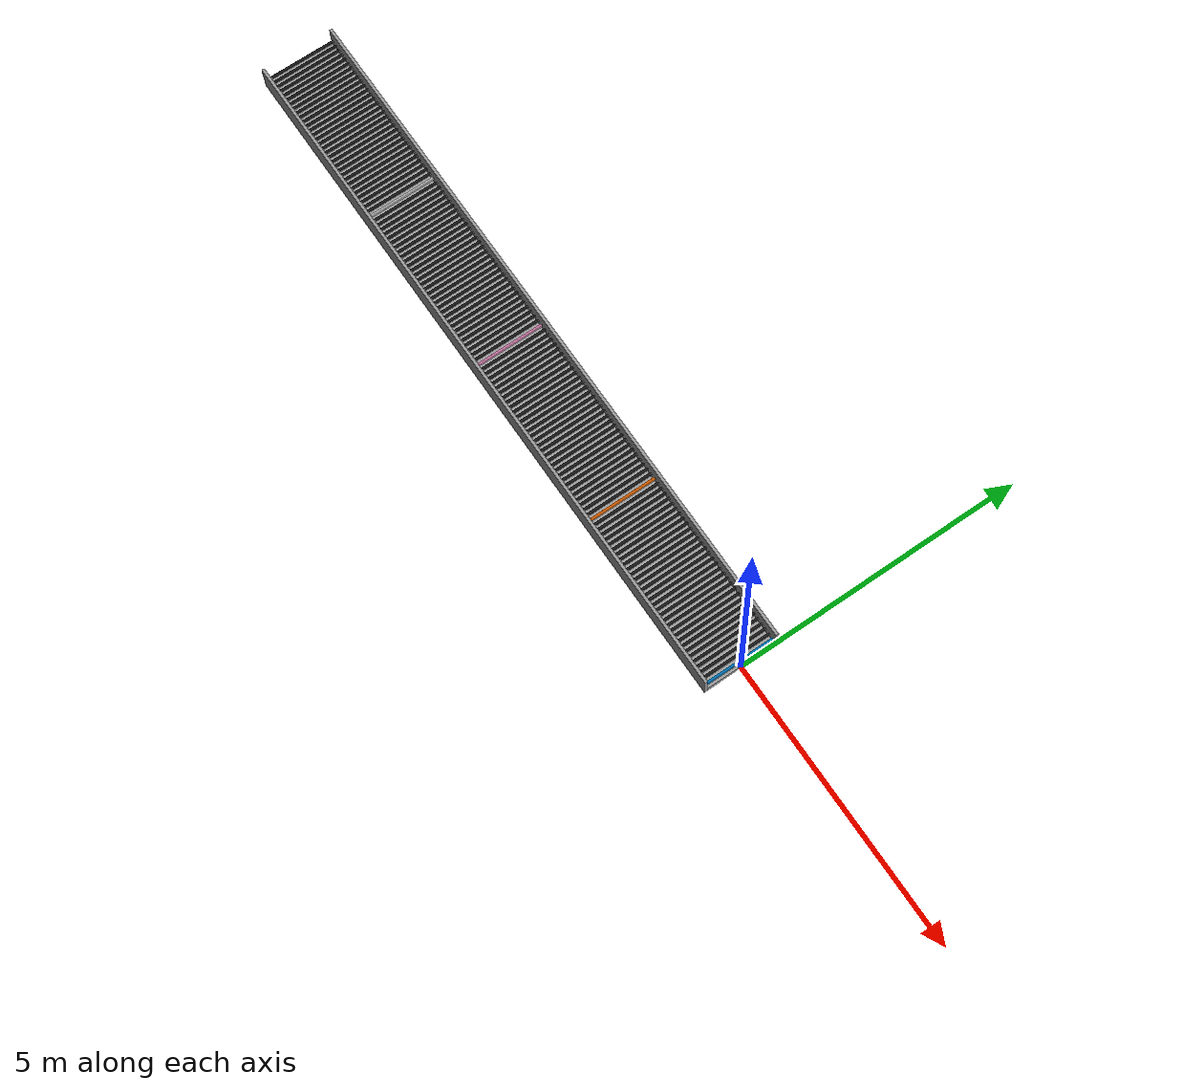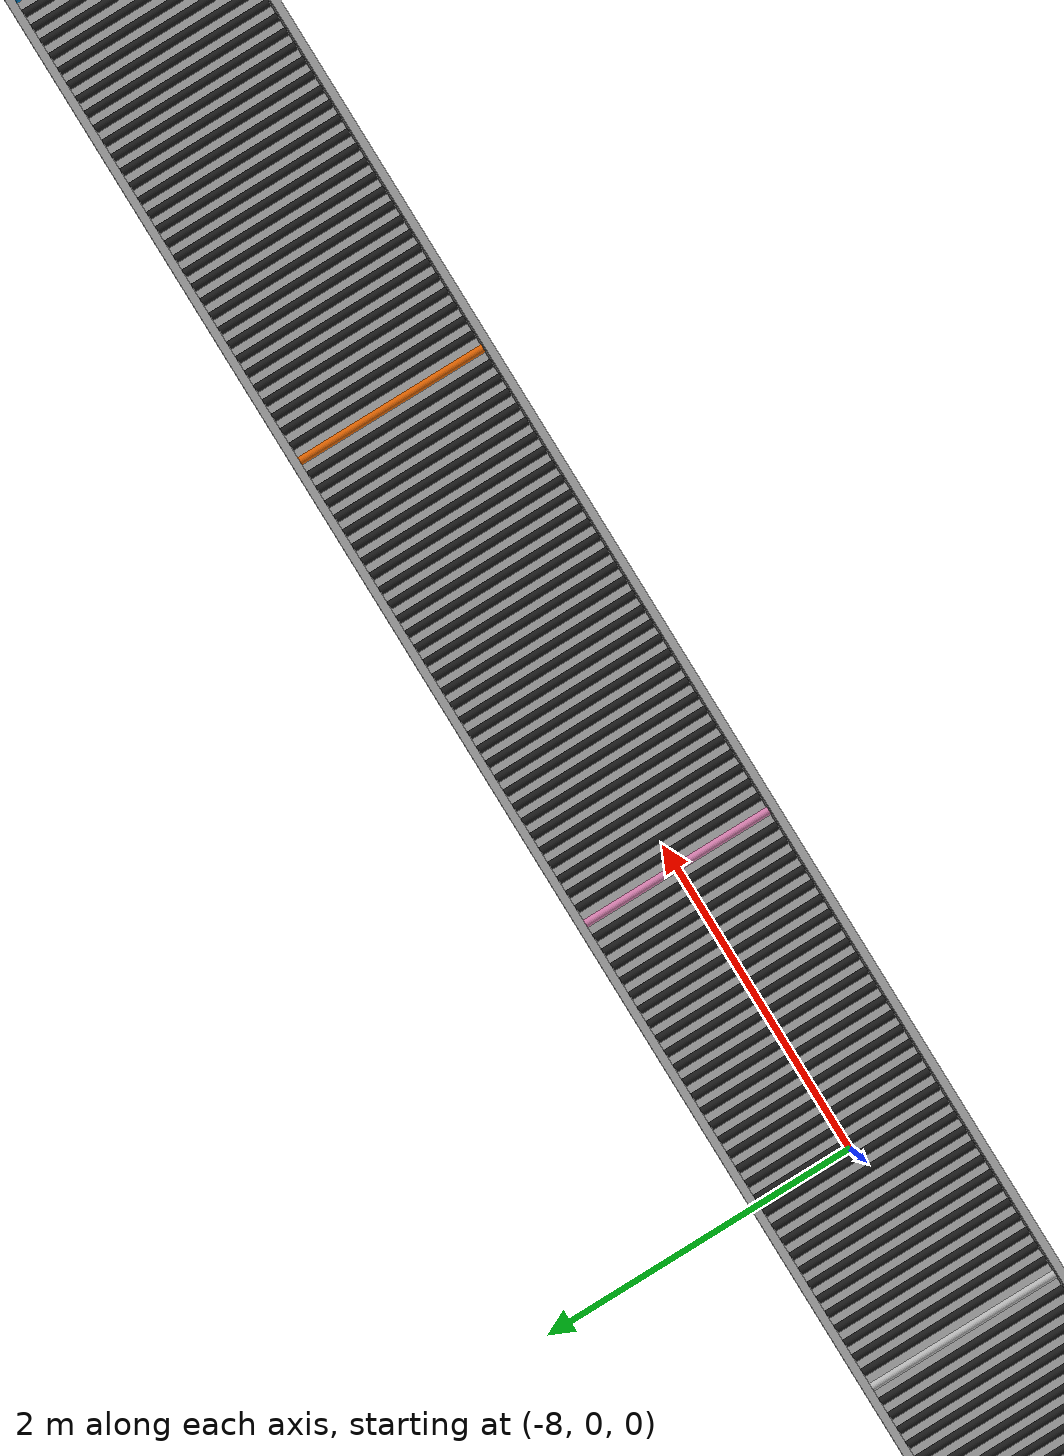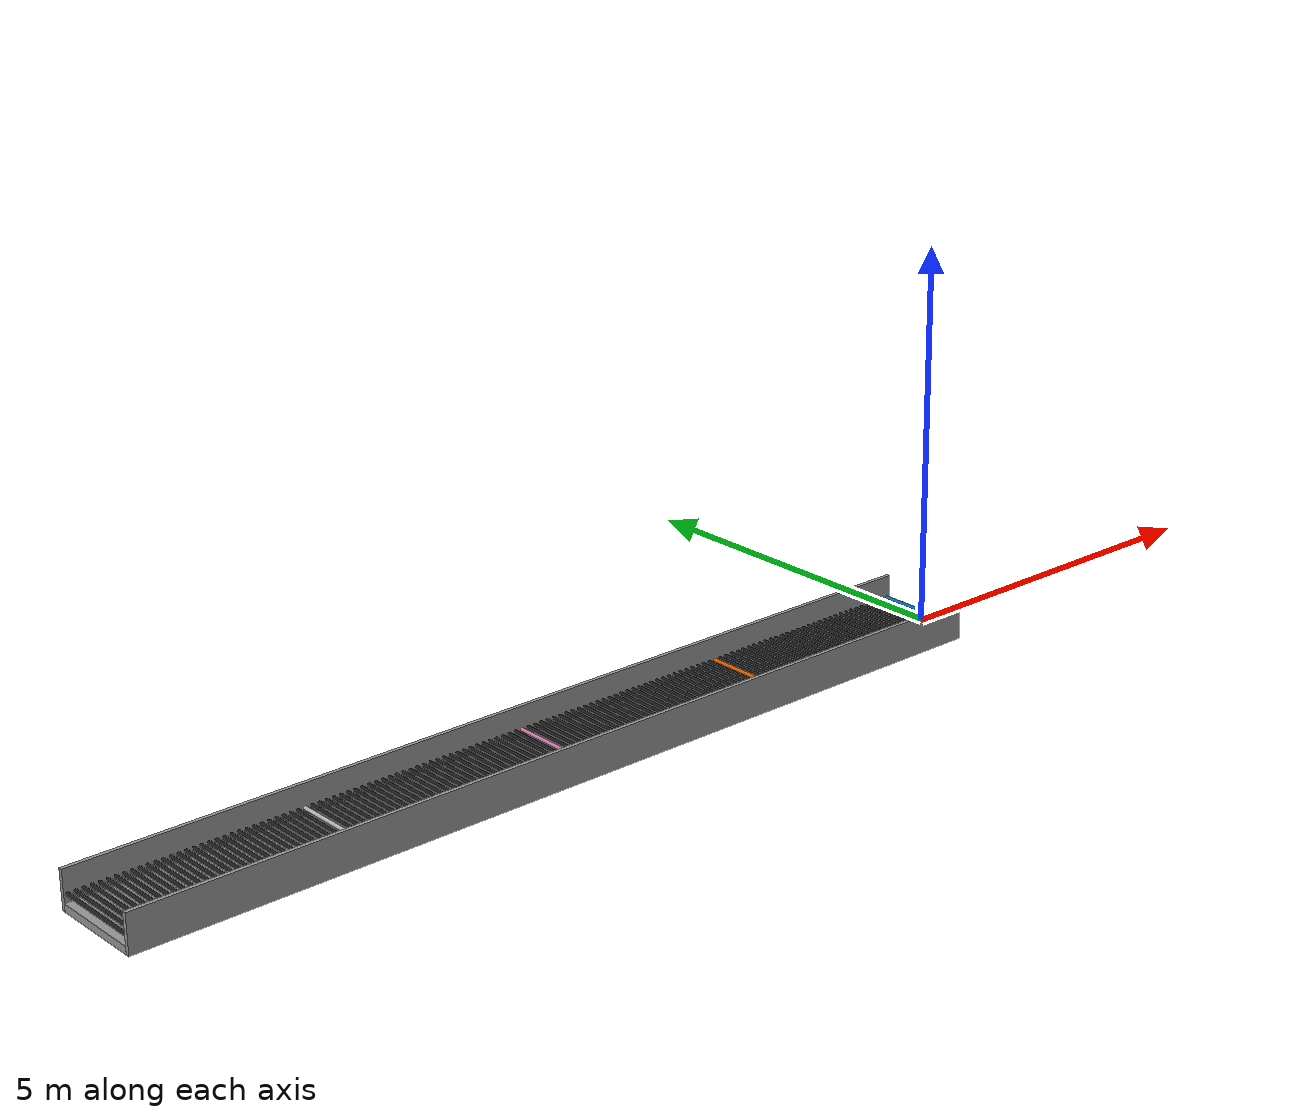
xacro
<?xml version="1.0" ?>
<robot name="roller_conveyor_40ft" xmlns:xacro="http://www.ros.org/wiki/xacro">

    <!-- Parameters -->
    <xacro:property name="roller_diameter" value="0.050"/> <!-- 50.8mm -->
    <xacro:property name="roller_length" value="1.219"/>   <!-- 4ft -->
    <xacro:property name="conveyor_length" value="12.192"/> <!-- 5ft -->
    <xacro:property name="conveyor_width" value="1.219"/>  <!-- 4ft -->
    <xacro:property name="roller_count" value="128"/>
    <xacro:property name="roller_pitch" value="0.09525"/>
    <xacro:property name="pi" value="3.1415926"/>
    <xacro:property name="roller_spacing" value="${conveyor_length / (roller_count)}"/>

    <link name="base_footprint"/>
    <joint name="base_link" type="fixed">
        <origin rpy="0 0 0" xyz="0 0 0"/>
        <parent link="base_footprint"/>
        <child link="base_link"/>
    </joint>
    <!-- Base Frame -->
    <link name="base_link">
        <visual>
            <origin xyz="-6.096 0 0" rpy="0 0 0" />
            <geometry>
                <box size="12.192 1.219 0.1"/>
            </geometry>
            <material name="gray">
                <color rgba="0.6 0.6 0.6 1.0"/>
            </material>
        </visual>
        <collision>
            <origin xyz="-6.096 0 0" rpy="0 0 0" />
            <geometry>
                <box size="12.192 1.219 0.1"/>
            </geometry>
        </collision>
        <inertial>
            <origin xyz="-6.096 0 0" rpy="0 0 0" />
            <mass value="20.0"/>
            <inertia ixx="0.2" iyy="0.2" izz="0.2"/>
        </inertial>
    </link>

    <!-- Left Guide Frame-->
    <link name="leftFrame">
        <visual>
            <origin xyz="-6.096 0 0" rpy="0 0 0" />
            <geometry>
                <box size="12.192 0.05 0.5"/>
            </geometry>
            <material name="gray">
                <color rgba="0.6 0.6 0.6 1.0"/>
            </material>
        </visual>
        <collision>
            <origin xyz="-6.096 0 0" rpy="0 0 0" />
            <geometry>
                <box size="12.192 0.05 0.5"/>
            </geometry>
        </collision>
        <inertial>
            <origin xyz="-6.096 0 0" rpy="0 0 0" />
            <mass value="20.0"/>
            <inertia ixx="0.2" iyy="0.2" izz="0.2"/>
        </inertial>
    </link>
    <joint name="leftFrameJoint" type="fixed">
        <parent link="base_link"/>
        <child link="leftFrame"/>
        <origin xyz="0 -0.63 0.2" rpy="0 0 0"/>
        <axis xyz="0 0 1"/>
    </joint>

    <!-- Right Guide Frame-->
    <link name="rightFrame">
        <visual>
            <origin xyz="-6.096 0 0" rpy="0 0 0" />
            <geometry>
                <box size="12.192 0.05 0.5"/>
            </geometry>
            <material name="gray">
                <color rgba="0.6 0.6 0.6 1.0"/>
            </material>
        </visual>
        <collision>
            <origin xyz="-6.096 0 0" rpy="0 0 0" />
            <geometry>
                <box size="12.192 0.05 0.5"/>
            </geometry>
        </collision>
        <inertial>
            <origin xyz="-6.096 0 0" rpy="0 0 0" />
            <mass value="20.0"/>
            <inertia ixx="0.2" iyy="0.2" izz="0.2"/>
        </inertial>
    </link>
    <joint name="rightFrameJoint" type="fixed">
        <parent link="base_link"/>
        <child link="rightFrame"/>
        <origin xyz="0 0.63 0.2" rpy="0 0 0"/>
        <axis xyz="0 0 1"/>
    </joint>

    <!-- Start Roller Definitions -->
    <!-- In between rollers, starting from #1->#32 -->
    <!-- Roller 1 -->
    <link name="Roller_1"><visual><geometry><cylinder radius="0.025" length="1.219"/></geometry></visual>
        <visual>
            <geometry>
                <cylinder radius="0.025" length="1.219"/>
            </geometry>
            <material name="black">
                <color rgba="0.1 0.1 0.1 1.0"/>
            </material>
        </visual>
        <collision>
            <geometry>
                <cylinder radius="0.025" length="1.219"/>
            </geometry>
        </collision>
        <inertial>
            <mass value="2.0"/>
            <inertia ixx="0.02" iyy="0.02" izz="0.02"/>
        </inertial>
    </link>

    <joint name="Roller_1_1_joint" type="continuous">
        <parent link="base_link"/>
        <child link="Roller_1"/>
        <origin xyz="-${roller_pitch/2} 0 0.15" rpy="1.570796 0 0"/>
        <axis xyz="0 0 1"/>
        <dynamics damping="1.0" friction="0.0"/>
    </joint>

    <!-- Roller #2->#32 -->
    <xacro:macro name="roller1st5ft" params="rollerNum">
        <link name="Roller_${rollerNum}">
            <visual>
                <geometry>
                    <cylinder radius="0.025" length="1.219"/>
                </geometry>
                <material name="black">
                    <color rgba="0.1 0.1 0.1 1.0"/>
                </material>
            </visual>
            <collision>
                <geometry>
                    <cylinder radius="0.025" length="1.219"/>
                </geometry>
            </collision>
            <inertial>
                <mass value="2.0"/>
                <inertia ixx="0.02" iyy="0.02" izz="0.02"/>
            </inertial>
        </link>

        <joint name="Roller_1_${rollerNum}_joint" type="continuous">
            <parent link="base_link"/>
            <child link="Roller_${rollerNum}"/>
            <origin xyz="-${(rollerNum-1)*roller_pitch + roller_pitch/2} 0 0.15" rpy="${pi/2} 0 0"/>
            <axis xyz="0 0 1"/>
            <dynamics damping="1.0" friction="0.0"/>
        </joint>
    </xacro:macro>

    <!-- In between rollers, starting from #33->#64 -->
    <!-- Roller #33 -->
    <link name="Roller_33"><visual><geometry><cylinder radius="0.025" length="1.219"/></geometry></visual>
        <visual>
            <geometry>
                <cylinder radius="0.025" length="1.219"/>
            </geometry>
            <material name="black">
                <color rgba="0.1 0.1 0.1 1.0"/>
            </material>
        </visual>
        <collision>
            <geometry>
                <cylinder radius="0.025" length="1.219"/>
            </geometry>
        </collision>
        <inertial>
            <mass value="2.0"/>
            <inertia ixx="0.02" iyy="0.02" izz="0.02"/>
        </inertial>
    </link>

    <joint name="Roller_33_33_joint" type="continuous">
        <parent link="base_link"/>
        <child link="Roller_33"/>
        <origin xyz="-${(32)*roller_pitch + roller_pitch/2} 0 0.15" rpy="1.570796 0 0"/>
        <axis xyz="0 0 1"/>
        <dynamics damping="1.0" friction="0.0"/>
    </joint>

    <!-- Roller #34->#64 -->
    <xacro:macro name="roller2nd5ft" params="rollerNum">
        <link name="Roller_${rollerNum}">
            <visual>
                <geometry>
                    <cylinder radius="0.025" length="1.219"/>
                </geometry>
                <material name="black">
                    <color rgba="0.1 0.1 0.1 1.0"/>
                </material>
            </visual>
            <collision>
                <geometry>
                    <cylinder radius="0.025" length="1.219"/>
                </geometry>
            </collision>
            <inertial>
                <mass value="2.0"/>
                <inertia ixx="0.02" iyy="0.02" izz="0.02"/>
            </inertial>
        </link>

        <joint name="Roller_33_${rollerNum}_joint" type="continuous">
            <parent link="base_link"/>
            <child link="Roller_${rollerNum}"/>
            <origin xyz="-${(rollerNum-1)*roller_pitch + roller_pitch/2} 0 0.15" rpy="${pi/2} 0 0"/>
            <axis xyz="0 0 1"/>
            <dynamics damping="1.0" friction="0.0"/>
        </joint>
    </xacro:macro>

    <!-- In between rollders, starting from #65->#96 -->
    <!-- Roller #65 -->
    <link name="Roller_65"><visual><geometry><cylinder radius="0.025" length="1.219"/></geometry></visual>
        <visual>
            <geometry>
                <cylinder radius="0.025" length="1.219"/>
            </geometry>
            <material name="black">
                <color rgba="0.1 0.1 0.1 1.0"/>
            </material>
        </visual>
        <collision>
            <geometry>
                <cylinder radius="0.025" length="1.219"/>
            </geometry>
        </collision>
        <inertial>
            <mass value="2.0"/>
            <inertia ixx="0.02" iyy="0.02" izz="0.02"/>
        </inertial>
    </link>

    <joint name="Roller_65_65_joint" type="continuous">
        <parent link="base_link"/>
        <child link="Roller_65"/>
        <origin xyz="-${(64)*roller_pitch + roller_pitch/2} 0 0.15" rpy="1.570796 0 0"/>
        <axis xyz="0 0 1"/>
        <dynamics damping="1.0" friction="0.0"/>
    </joint>

    <!-- Roller #66->#96 -->
    <xacro:macro name="roller3rd5ft" params="rollerNum">
        <link name="Roller_${rollerNum}">
            <visual>
                <geometry>
                    <cylinder radius="0.025" length="1.219"/>
                </geometry>
                <material name="black">
                    <color rgba="0.1 0.1 0.1 1.0"/>
                </material>
            </visual>
            <collision>
                <geometry>
                    <cylinder radius="0.025" length="1.219"/>
                </geometry>
            </collision>
            <inertial>
                <mass value="2.0"/>
                <inertia ixx="0.02" iyy="0.02" izz="0.02"/>
            </inertial>
        </link>

        <joint name="Roller_65_${rollerNum}_joint" type="continuous">
            <parent link="base_link"/>
            <child link="Roller_${rollerNum}"/>
            <origin xyz="-${(rollerNum-1)*roller_pitch + roller_pitch/2} 0 0.15" rpy="${pi/2} 0 0"/>
            <axis xyz="0 0 1"/>
            <dynamics damping="1.0" friction="0.0"/>
        </joint>
    </xacro:macro>

    <!-- In between rollders, starting from #97->#128 -->
    <!-- Roller #97 -->
    <link name="Roller_97"><visual><geometry><cylinder radius="0.025" length="1.219"/></geometry></visual>
        <visual>
            <geometry>
                <cylinder radius="0.025" length="1.219"/>
            </geometry>
            <material name="black">
                <color rgba="0.1 0.1 0.1 1.0"/>
            </material>
        </visual>
        <collision>
            <geometry>
                <cylinder radius="0.025" length="1.219"/>
            </geometry>
        </collision>
        <inertial>
            <mass value="2.0"/>
            <inertia ixx="0.02" iyy="0.02" izz="0.02"/>
        </inertial>
    </link>

    <joint name="Roller_97_97_joint" type="continuous">
        <parent link="base_link"/>
        <child link="Roller_97"/>
        <origin xyz="-${(96)*roller_pitch + roller_pitch/2} 0 0.15" rpy="1.570796 0 0"/>
        <axis xyz="0 0 1"/>
        <dynamics damping="1.0" friction="0.0"/>
    </joint>

    <!-- Roller #98->#128 -->
    <xacro:macro name="roller4th5ft" params="rollerNum">
        <link name="Roller_${rollerNum}">
            <visual>
                <geometry>
                    <cylinder radius="0.025" length="1.219"/>
                </geometry>
                <material name="black">
                    <color rgba="0.1 0.1 0.1 1.0"/>
                </material>
            </visual>
            <collision>
                <geometry>
                    <cylinder radius="0.025" length="1.219"/>
                </geometry>
            </collision>
            <inertial>
                <mass value="2.0"/>
                <inertia ixx="0.02" iyy="0.02" izz="0.02"/>
            </inertial>
        </link>

        <joint name="Roller_97_${rollerNum}_joint" type="continuous">
            <parent link="base_link"/>
            <child link="Roller_${rollerNum}"/>
            <origin xyz="-${(rollerNum-1)*roller_pitch + roller_pitch/2} 0 0.15" rpy="${pi/2} 0 0"/>
            <axis xyz="0 0 1"/>
            <dynamics damping="1.0" friction="0.0"/>
        </joint>
    </xacro:macro>

    <!-- Instantiate Rollers -->
    <!-- First 5ft #1 -> #32-->
    <xacro:roller1st5ft rollerNum="2"/>
    <xacro:roller1st5ft rollerNum="3"/>
    <xacro:roller1st5ft rollerNum="4"/>
    <xacro:roller1st5ft rollerNum="5"/>
    <xacro:roller1st5ft rollerNum="6"/>
    <xacro:roller1st5ft rollerNum="7"/>
    <xacro:roller1st5ft rollerNum="8"/>
    <xacro:roller1st5ft rollerNum="9"/>
    <xacro:roller1st5ft rollerNum="10"/>
    <xacro:roller1st5ft rollerNum="11"/>
    <xacro:roller1st5ft rollerNum="12"/>
    <xacro:roller1st5ft rollerNum="13"/>
    <xacro:roller1st5ft rollerNum="14"/>
    <xacro:roller1st5ft rollerNum="15"/>
    <xacro:roller1st5ft rollerNum="16"/>
    <xacro:roller1st5ft rollerNum="17"/>
    <xacro:roller1st5ft rollerNum="18"/>
    <xacro:roller1st5ft rollerNum="19"/>
    <xacro:roller1st5ft rollerNum="20"/>
    <xacro:roller1st5ft rollerNum="21"/>
    <xacro:roller1st5ft rollerNum="22"/>
    <xacro:roller1st5ft rollerNum="23"/>
    <xacro:roller1st5ft rollerNum="24"/>
    <xacro:roller1st5ft rollerNum="25"/>
    <xacro:roller1st5ft rollerNum="26"/>
    <xacro:roller1st5ft rollerNum="27"/>
    <xacro:roller1st5ft rollerNum="28"/>
    <xacro:roller1st5ft rollerNum="29"/>
    <xacro:roller1st5ft rollerNum="30"/>
    <xacro:roller1st5ft rollerNum="31"/>
    <xacro:roller1st5ft rollerNum="32"/>

    <!-- Second 5ft #33 -> #64-->
    <xacro:roller2nd5ft rollerNum="34"/>
    <xacro:roller2nd5ft rollerNum="35"/>
    <xacro:roller2nd5ft rollerNum="36"/>
    <xacro:roller2nd5ft rollerNum="37"/>
    <xacro:roller2nd5ft rollerNum="38"/>
    <xacro:roller2nd5ft rollerNum="39"/>
    <xacro:roller2nd5ft rollerNum="40"/>
    <xacro:roller2nd5ft rollerNum="41"/>
    <xacro:roller2nd5ft rollerNum="42"/>
    <xacro:roller2nd5ft rollerNum="43"/>
    <xacro:roller2nd5ft rollerNum="44"/>
    <xacro:roller2nd5ft rollerNum="45"/>
    <xacro:roller2nd5ft rollerNum="46"/>
    <xacro:roller2nd5ft rollerNum="47"/>
    <xacro:roller2nd5ft rollerNum="48"/>
    <xacro:roller2nd5ft rollerNum="49"/>
    <xacro:roller2nd5ft rollerNum="50"/>
    <xacro:roller2nd5ft rollerNum="51"/>
    <xacro:roller2nd5ft rollerNum="52"/>
    <xacro:roller2nd5ft rollerNum="53"/>
    <xacro:roller2nd5ft rollerNum="54"/>
    <xacro:roller2nd5ft rollerNum="55"/>
    <xacro:roller2nd5ft rollerNum="56"/>
    <xacro:roller2nd5ft rollerNum="57"/>
    <xacro:roller2nd5ft rollerNum="58"/>
    <xacro:roller2nd5ft rollerNum="59"/>
    <xacro:roller2nd5ft rollerNum="60"/>
    <xacro:roller2nd5ft rollerNum="61"/>
    <xacro:roller2nd5ft rollerNum="62"/>
    <xacro:roller2nd5ft rollerNum="63"/>
    <xacro:roller2nd5ft rollerNum="64"/>

    <!-- Third 5ft #65 -> #96-->
    <xacro:roller3rd5ft rollerNum="66"/>
    <xacro:roller3rd5ft rollerNum="67"/>
    <xacro:roller3rd5ft rollerNum="68"/>
    <xacro:roller3rd5ft rollerNum="69"/>
    <xacro:roller3rd5ft rollerNum="70"/>
    <xacro:roller3rd5ft rollerNum="71"/>
    <xacro:roller3rd5ft rollerNum="72"/>
    <xacro:roller3rd5ft rollerNum="73"/>
    <xacro:roller3rd5ft rollerNum="74"/>
    <xacro:roller3rd5ft rollerNum="75"/>
    <xacro:roller3rd5ft rollerNum="76"/>
    <xacro:roller3rd5ft rollerNum="77"/>
    <xacro:roller3rd5ft rollerNum="78"/>
    <xacro:roller3rd5ft rollerNum="79"/>
    <xacro:roller3rd5ft rollerNum="80"/>
    <xacro:roller3rd5ft rollerNum="81"/>
    <xacro:roller3rd5ft rollerNum="82"/>
    <xacro:roller3rd5ft rollerNum="83"/>
    <xacro:roller3rd5ft rollerNum="84"/>
    <xacro:roller3rd5ft rollerNum="85"/>
    <xacro:roller3rd5ft rollerNum="86"/>
    <xacro:roller3rd5ft rollerNum="87"/>
    <xacro:roller3rd5ft rollerNum="88"/>
    <xacro:roller3rd5ft rollerNum="89"/>
    <xacro:roller3rd5ft rollerNum="90"/>
    <xacro:roller3rd5ft rollerNum="91"/>
    <xacro:roller3rd5ft rollerNum="92"/>
    <xacro:roller3rd5ft rollerNum="93"/>
    <xacro:roller3rd5ft rollerNum="94"/>
    <xacro:roller3rd5ft rollerNum="95"/>
    <xacro:roller3rd5ft rollerNum="96"/>

    <!-- Fourth 5ft #97 -> #128-->
    <xacro:roller4th5ft rollerNum="98"/>
    <xacro:roller4th5ft rollerNum="99"/>
    <xacro:roller4th5ft rollerNum="100"/>
    <xacro:roller4th5ft rollerNum="101"/>
    <xacro:roller4th5ft rollerNum="102"/>
    <xacro:roller4th5ft rollerNum="103"/>
    <xacro:roller4th5ft rollerNum="104"/>
    <xacro:roller4th5ft rollerNum="105"/>
    <xacro:roller4th5ft rollerNum="106"/>
    <xacro:roller4th5ft rollerNum="107"/>
    <xacro:roller4th5ft rollerNum="108"/>
    <xacro:roller4th5ft rollerNum="109"/>
    <xacro:roller4th5ft rollerNum="110"/>
    <xacro:roller4th5ft rollerNum="111"/>
    <xacro:roller4th5ft rollerNum="112"/>
    <xacro:roller4th5ft rollerNum="113"/>
    <xacro:roller4th5ft rollerNum="114"/>
    <xacro:roller4th5ft rollerNum="115"/>
    <xacro:roller4th5ft rollerNum="116"/>
    <xacro:roller4th5ft rollerNum="117"/>
    <xacro:roller4th5ft rollerNum="118"/>
    <xacro:roller4th5ft rollerNum="119"/>
    <xacro:roller4th5ft rollerNum="120"/>
    <xacro:roller4th5ft rollerNum="121"/>
    <xacro:roller4th5ft rollerNum="122"/>
    <xacro:roller4th5ft rollerNum="123"/>
    <xacro:roller4th5ft rollerNum="124"/>
    <xacro:roller4th5ft rollerNum="125"/>
    <xacro:roller4th5ft rollerNum="126"/>
    <xacro:roller4th5ft rollerNum="127"/>
    <xacro:roller4th5ft rollerNum="128"/>

</robot>
